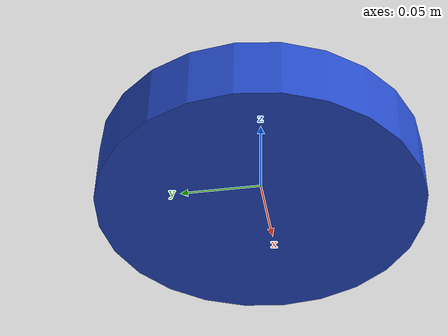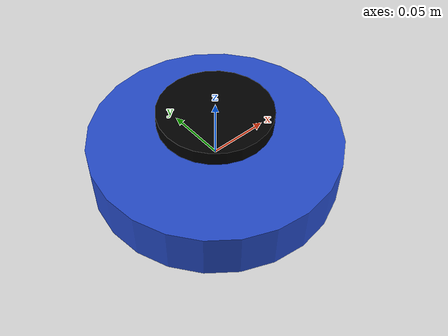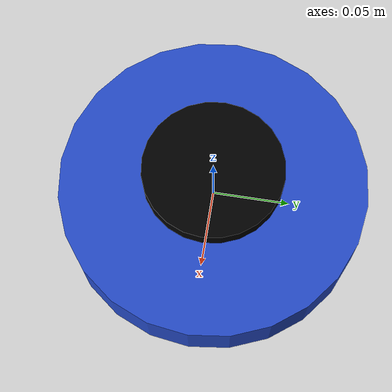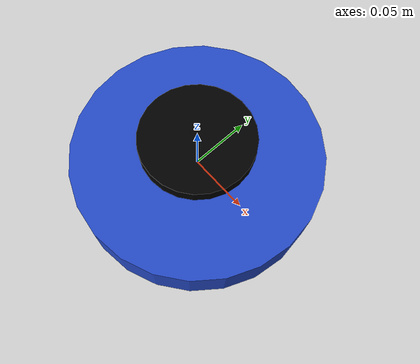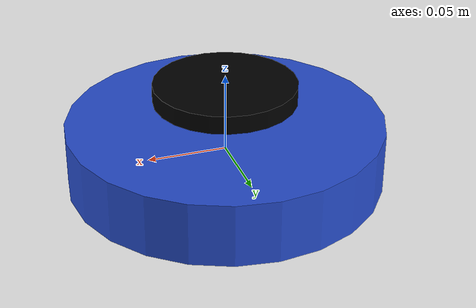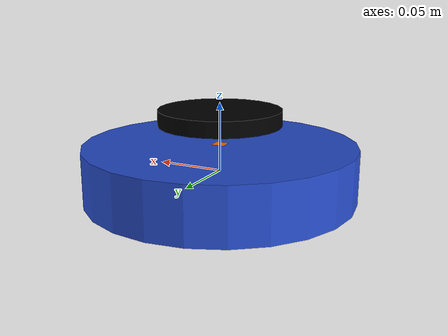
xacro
<?xml version="1.0" ?>

<robot name="bug1">
 <!--xacro:arg name="laser_visual" default="true"/-->

  <material name="black">
    <color rgba="0.0 0.0 0.0 1.0"/>
  </material>
  <material name="blue">
    <color rgba="0.203125 0.23828125 0.28515625 1.0"/>
  </material>
  <material name="green">
    <color rgba="0.0 0.8 0.0 1.0"/>
  </material>
  <material name="grey">
    <color rgba="0.2 0.2 0.2 1.0"/>
  </material>
  <material name="orange">
    <color rgba="1.0 0.423529411765 0.0392156862745 1.0"/>
  </material>
  <material name="brown">
    <color rgba="0.870588235294 0.811764705882 0.764705882353 1.0"/>
  </material>
  <material name="red">
    <color rgba="0.80078125 0.12890625 0.1328125 1.0"/>
  </material>
  <material name="white">
    <color rgba="1.0 1.0 1.0 1.0"/>
  </material>

  <gazebo reference="base_footprint">
    <material>Gazebo/Orange</material>
  </gazebo>
  <gazebo reference="base_link">
    <material>Gazebo/Blue</material>
  </gazebo>

  <!-- root link, on the ground just below the model origin -->
  <link name="base_footprint">
   <visual>
      <origin xyz="0 0 0" rpy="0 0 0" />
      <geometry>
        <box size="0.01 0.01 0.04" />              <!--cylinder length="0.04" radius="0.1"-->
      </geometry>
      <material name="orange"/>
    </visual>
  </link>

  <joint name="base_link_joint" type="fixed">
    <origin xyz="0.0 0 0.00" rpy="0 0 0" />
    <parent link="base_footprint"/>
    <child link="base_link" />
  </joint>

  <!-- the model -->
  <link name="base_link">
    <inertial>
      <mass value="5" />
      <origin xyz="0 0 0" />
      <inertia ixx="0.00052666666" ixy="0" ixz="0" iyy="0.00052666666" iyz="0" izz="0.001" />
    </inertial>
    <visual>
      <geometry>
        <cylinder length="0.04" radius="0.1" /> <!-- does not need to match collision -->
        <material name="blue"/>
      </geometry>
    </visual>
    <collision>
      <origin xyz="0 0 0" />
      <geometry>
        <cylinder length="0.04" radius="0.1" />

      </geometry>
      <surface>
        <friction>
          <ode>
            <mu>0</mu>
            <mu2>0</mu2>
            <slip1>1.0</slip1>
            <slip2>1.0</slip2>
          </ode>
        </friction>
      </surface>
    </collision>
  </link>

  <joint name="scan_joint" type="fixed">
    <parent link="base_link"/>
    <child link="base_scan"/>
    <origin xyz="0 0 0.04" rpy="0 0 0"/>
  </joint>

  <link name="base_scan">
    <visual>
      <origin xyz="0 0 0.0" rpy="0 0 0"/>
      <geometry>
        <cylinder length="0.0115" radius="0.045"/>
      </geometry>
      <material name="black"/>
    </visual>

    <collision>
      <origin xyz="0.015 0 -0.0065" rpy="0 0 0"/>
      <geometry>
        <cylinder length="0.0115" radius="0.045"/>
      </geometry>
    </collision>

    <inertial>
      <mass value="0.114" />
      <origin xyz="0 0 0" />
      <inertia ixx="0.001" ixy="0.0" ixz="0.0"
               iyy="0.001" iyz="0.0"
               izz="0.001" />
    </inertial>
  </link>

  <gazebo>
    <plugin name="object_controller" filename="libgazebo_ros_planar_move.so">
      <commandTopic>cmd_vel</commandTopic>
      <odometryTopic>odom</odometryTopic>
      <odometryFrame>odom</odometryFrame>
      <odometryRate>20.0</odometryRate>
      <robotBaseFrame>base_footprint</robotBaseFrame>
    </plugin>
  </gazebo>

  <gazebo reference="base_scan">
    <material>Gazebo/FlatBlack</material>
    <sensor type="ray" name="lds_lfcd_sensor">
      <pose>0 0 0 0 0 0</pose>
      <visualize>true</visualize>
      <update_rate>5</update_rate>
      <ray>
        <scan>
          <horizontal>
            <samples>360</samples>   <!--# The number of sample. Modify it to 24   360-->
            <resolution>1</resolution>
            <min_angle>0.0</min_angle>
            <max_angle>6.28319</max_angle> <!--# The number of max_angle. Modify it to 24   6.28319-->
          </horizontal>
        </scan>
        <range>
          <min>0.050</min>
          <max>0.35</max>
          <resolution>0.0015</resolution>
        </range>
        <noise>
          <type>gaussian</type>
          <mean>0.0</mean>
          <stddev>0.01</stddev>
        </noise>
      </ray>
      <plugin name="gazebo_ros_lds_lfcd_controller" filename="libgazebo_ros_laser.so">
        <topicName>scan</topicName>
        <frameName>base_scan</frameName>
      </plugin>
    </sensor>
  </gazebo>

</robot>
